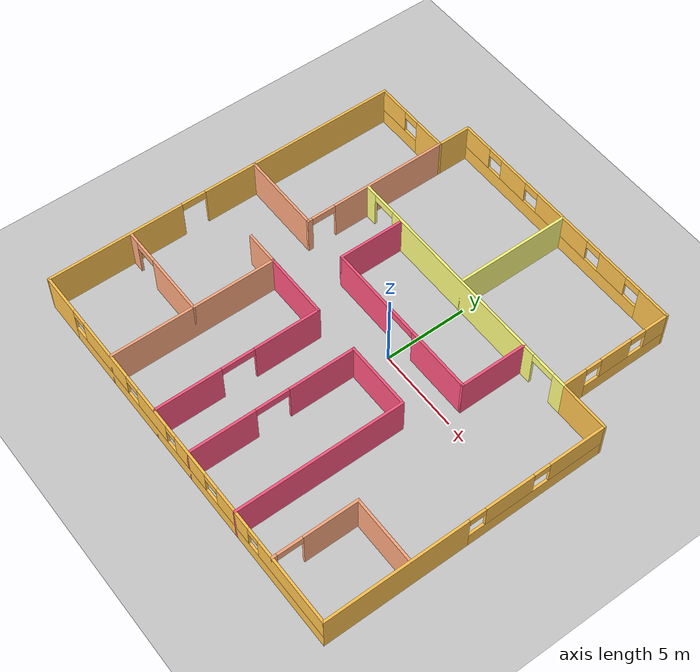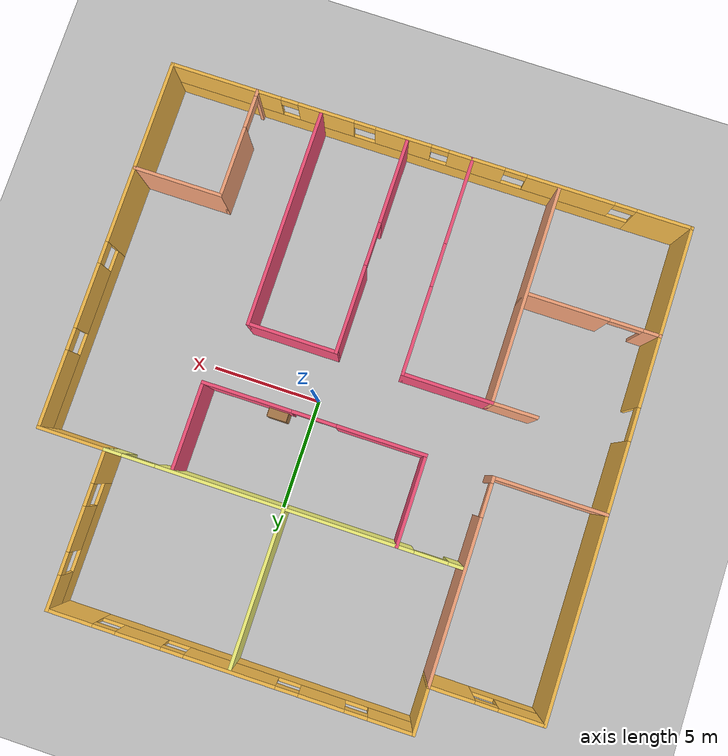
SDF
<sdf version="1.6">
 <world name="default">
  <model name="ground_plane">
   <static>1</static>
   <link name="link">
    <collision name="collision">
     <geometry><plane><normal>0 0 1</normal><size>100 100</size></plane></geometry>
     <surface><friction><ode><mu>100</mu><mu2>50</mu2></ode></friction></surface>
    </collision>
    <visual name="visual">
     <cast_shadows>0</cast_shadows>
     <geometry><plane><normal>0 0 1</normal><size>100 100</size></plane></geometry>
     <material>
      <script><uri>file://media/materials/scripts/gazebo.material</uri><name>Gazebo/Grey</name></script>
     </material>
    </visual>
   </link>
  </model>
  <model name="myWorld">
   <pose>-1.22392 -0.0788 0 0 -0 0</pose>
   <link name="Wall_0">
    <pose>0 -12 0 0 -0 0</pose>
    <visual name="Wall_0_Visual_0">
     <pose>-10.7875 0 1.25 0 -0 0</pose>
     <geometry><box><size>2.575 0.15 2.5</size></box></geometry>
     <material>
      <script><uri>file://media/materials/scripts/gazebo.material</uri><name>Gazebo/Grey</name></script>
      <ambient>1 0.764706 0.305882 1</ambient>
     </material>
     <meta><layer>0</layer></meta>
    </visual>
    <collision name="Wall_0_Collision_0">
     <geometry><box><size>2.575 0.15 2.5</size></box></geometry>
     <pose>-10.7875 0 1.25 0 -0 0</pose>
    </collision>
    <visual name="Wall_0_Visual_1">
     <pose>1.2875 0 0.5 0 -0 0</pose>
     <geometry><box><size>21.575 0.15 1</size></box></geometry>
     <material>
      <script><uri>file://media/materials/scripts/gazebo.material</uri><name>Gazebo/Grey</name></script>
      <ambient>1 0.764706 0.305882 1</ambient>
     </material>
     <meta><layer>0</layer></meta>
    </visual>
    <collision name="Wall_0_Collision_1">
     <geometry><box><size>21.575 0.15 1</size></box></geometry>
     <pose>1.2875 0 0.5 0 -0 0</pose>
    </collision>
    <visual name="Wall_0_Visual_2">
     <pose>-6.495 0 1.75 0 -0 0</pose>
     <geometry><box><size>4.01 0.15 1.5</size></box></geometry>
     <material>
      <script><uri>file://media/materials/scripts/gazebo.material</uri><name>Gazebo/Grey</name></script>
      <ambient>1 0.764706 0.305882 1</ambient>
     </material>
     <meta><layer>0</layer></meta>
    </visual>
    <collision name="Wall_0_Collision_2">
     <geometry><box><size>4.01 0.15 1.5</size></box></geometry>
     <pose>-6.495 0 1.75 0 -0 0</pose>
    </collision>
    <visual name="Wall_0_Visual_3">
     <pose>-2.195 0 1.75 0 -0 0</pose>
     <geometry><box><size>2.59 0.15 1.5</size></box></geometry>
     <material>
      <script><uri>file://media/materials/scripts/gazebo.material</uri><name>Gazebo/Grey</name></script>
      <ambient>1 0.764706 0.305882 1</ambient>
     </material>
     <meta><layer>0</layer></meta>
    </visual>
    <collision name="Wall_0_Collision_3">
     <geometry><box><size>2.59 0.15 1.5</size></box></geometry>
     <pose>-2.195 0 1.75 0 -0 0</pose>
    </collision>
    <visual name="Wall_0_Visual_4">
     <pose>1.195 0 1.75 0 -0 0</pose>
     <geometry><box><size>2.59 0.15 1.5</size></box></geometry>
     <material>
      <script><uri>file://media/materials/scripts/gazebo.material</uri><name>Gazebo/Grey</name></script>
      <ambient>1 0.764706 0.305882 1</ambient>
     </material>
     <meta><layer>0</layer></meta>
    </visual>
    <collision name="Wall_0_Collision_4">
     <geometry><box><size>2.59 0.15 1.5</size></box></geometry>
     <pose>1.195 0 1.75 0 -0 0</pose>
    </collision>
    <visual name="Wall_0_Visual_5">
     <pose>4.795 0 1.75 0 -0 0</pose>
     <geometry><box><size>2.61 0.15 1.5</size></box></geometry>
     <material>
      <script><uri>file://media/materials/scripts/gazebo.material</uri><name>Gazebo/Grey</name></script>
      <ambient>1 0.764706 0.305882 1</ambient>
     </material>
     <meta><layer>0</layer></meta>
    </visual>
    <collision name="Wall_0_Collision_5">
     <geometry><box><size>2.61 0.15 1.5</size></box></geometry>
     <pose>4.795 0 1.75 0 -0 0</pose>
    </collision>
    <visual name="Wall_0_Visual_6">
     <pose>9.4875 0 1.75 0 -0 0</pose>
     <geometry><box><size>5.175 0.15 1.5</size></box></geometry>
     <material>
      <script><uri>file://media/materials/scripts/gazebo.material</uri><name>Gazebo/Grey</name></script>
      <ambient>1 0.764706 0.305882 1</ambient>
     </material>
     <meta><layer>0</layer></meta>
    </visual>
    <collision name="Wall_0_Collision_6">
     <geometry><box><size>5.175 0.15 1.5</size></box></geometry>
     <pose>9.4875 0 1.75 0 -0 0</pose>
    </collision>
    <visual name="Wall_0_Visual_7">
     <pose>-9 0 2.25 0 -0 0</pose>
     <geometry><box><size>1 0.15 0.5</size></box></geometry>
     <material>
      <script><uri>file://media/materials/scripts/gazebo.material</uri><name>Gazebo/Grey</name></script>
      <ambient>1 0.764706 0.305882 1</ambient>
     </material>
     <meta><layer>0</layer></meta>
    </visual>
    <collision name="Wall_0_Collision_7">
     <geometry><box><size>1 0.15 0.5</size></box></geometry>
     <pose>-9 0 2.25 0 -0 0</pose>
    </collision>
    <visual name="Wall_0_Visual_8">
     <pose>-3.99 0 2.25 0 -0 0</pose>
     <geometry><box><size>1 0.15 0.5</size></box></geometry>
     <material>
      <script><uri>file://media/materials/scripts/gazebo.material</uri><name>Gazebo/Grey</name></script>
      <ambient>1 0.764706 0.305882 1</ambient>
     </material>
     <meta><layer>0</layer></meta>
    </visual>
    <collision name="Wall_0_Collision_8">
     <geometry><box><size>1 0.15 0.5</size></box></geometry>
     <pose>-3.99 0 2.25 0 -0 0</pose>
    </collision>
    <visual name="Wall_0_Visual_9">
     <pose>-0.5 0 2.25 0 -0 0</pose>
     <geometry><box><size>0.8 0.15 0.5</size></box></geometry>
     <material>
      <script><uri>file://media/materials/scripts/gazebo.material</uri><name>Gazebo/Grey</name></script>
      <ambient>1 0.764706 0.305882 1</ambient>
     </material>
     <meta><layer>0</layer></meta>
    </visual>
    <collision name="Wall_0_Collision_9">
     <geometry><box><size>0.8 0.15 0.5</size></box></geometry>
     <pose>-0.5 0 2.25 0 -0 0</pose>
    </collision>
    <visual name="Wall_0_Visual_10">
     <pose>2.99 0 2.25 0 -0 0</pose>
     <geometry><box><size>1 0.15 0.5</size></box></geometry>
     <material>
      <script><uri>file://media/materials/scripts/gazebo.material</uri><name>Gazebo/Grey</name></script>
      <ambient>1 0.764706 0.305882 1</ambient>
     </material>
     <meta><layer>0</layer></meta>
    </visual>
    <collision name="Wall_0_Collision_10">
     <geometry><box><size>1 0.15 0.5</size></box></geometry>
     <pose>2.99 0 2.25 0 -0 0</pose>
    </collision>
    <visual name="Wall_0_Visual_11">
     <pose>6.5 0 2.25 0 -0 0</pose>
     <geometry><box><size>0.8 0.15 0.5</size></box></geometry>
     <material>
      <script><uri>file://media/materials/scripts/gazebo.material</uri><name>Gazebo/Grey</name></script>
      <ambient>1 0.764706 0.305882 1</ambient>
     </material>
     <meta><layer>0</layer></meta>
    </visual>
    <collision name="Wall_0_Collision_11">
     <geometry><box><size>0.8 0.15 0.5</size></box></geometry>
     <pose>6.5 0 2.25 0 -0 0</pose>
    </collision>
   </link>
   <link name="Wall_10">
    <collision name="Wall_10_Collision">
     <geometry><box><size>10.15 0.15 2.5</size></box></geometry>
     <pose>0 0 1.25 0 -0 0</pose>
    </collision>
    <visual name="Wall_10_Visual">
     <pose>0 0 1.25 0 -0 0</pose>
     <geometry><box><size>10.15 0.15 2.5</size></box></geometry>
     <material>
      <script><uri>file://media/materials/scripts/gazebo.material</uri><name>Gazebo/Grey</name></script>
      <ambient>1 0.666667 0.498039 1</ambient>
     </material>
     <meta><layer>0</layer></meta>
    </visual>
    <pose>-6 -7 0 0 -0 1.5708</pose>
   </link>
   <link name="Wall_12">
    <pose>-9 -7 0 0 -0 0</pose>
    <visual name="Wall_12_Visual_0">
     <pose>-2.6625 0 1.25 0 -0 0</pose>
     <geometry><box><size>0.825 0.15 2.5</size></box></geometry>
     <material>
      <script><uri>file://media/materials/scripts/gazebo.material</uri><name>Gazebo/Grey</name></script>
      <ambient>1 0.666667 0.498039 1</ambient>
     </material>
     <meta><layer>0</layer></meta>
    </visual>
    <collision name="Wall_12_Collision_0">
     <geometry><box><size>0.825 0.15 2.5</size></box></geometry>
     <pose>-2.6625 0 1.25 0 -0 0</pose>
    </collision>
    <visual name="Wall_12_Visual_1">
     <pose>1.1625 0 1.25 0 -0 0</pose>
     <geometry><box><size>3.825 0.15 2.5</size></box></geometry>
     <material>
      <script><uri>file://media/materials/scripts/gazebo.material</uri><name>Gazebo/Grey</name></script>
      <ambient>1 0.666667 0.498039 1</ambient>
     </material>
     <meta><layer>0</layer></meta>
    </visual>
    <collision name="Wall_12_Collision_1">
     <geometry><box><size>3.825 0.15 2.5</size></box></geometry>
     <pose>1.1625 0 1.25 0 -0 0</pose>
    </collision>
    <visual name="Wall_12_Visual_2">
     <pose>-1.5 0 2.25 0 -0 0</pose>
     <geometry><box><size>1.5 0.15 0.5</size></box></geometry>
     <material>
      <script><uri>file://media/materials/scripts/gazebo.material</uri><name>Gazebo/Grey</name></script>
      <ambient>1 0.666667 0.498039 1</ambient>
     </material>
     <meta><layer>0</layer></meta>
    </visual>
    <collision name="Wall_12_Collision_2">
     <geometry><box><size>1.5 0.15 0.5</size></box></geometry>
     <pose>-1.5 0 2.25 0 -0 0</pose>
    </collision>
   </link>
   <link name="Wall_13">
    <collision name="Wall_13_Collision">
     <geometry><box><size>2.15 0.15 2.5</size></box></geometry>
     <pose>0 0 1.25 0 -0 0</pose>
    </collision>
    <visual name="Wall_13_Visual">
     <pose>0 0 1.25 0 -0 0</pose>
     <geometry><box><size>2.15 0.15 2.5</size></box></geometry>
     <material>
      <script><uri>file://media/materials/scripts/gazebo.material</uri><name>Gazebo/Grey</name></script>
      <ambient>1 0.666667 0.498039 1</ambient>
     </material>
     <meta><layer>0</layer></meta>
    </visual>
    <pose>-7 -2 0 0 -0 0</pose>
   </link>
   <link name="Wall_14">
    <collision name="Wall_14_Collision">
     <geometry><box><size>4.15 0.15 2.5</size></box></geometry>
     <pose>0 0 1.25 0 -0 0</pose>
    </collision>
    <visual name="Wall_14_Visual">
     <pose>0 0 1.25 0 -0 0</pose>
     <geometry><box><size>4.15 0.15 2.5</size></box></geometry>
     <material>
      <script><uri>file://media/materials/scripts/gazebo.material</uri><name>Gazebo/Grey</name></script>
      <ambient>1 0.333333 0.498039 1</ambient>
     </material>
     <meta><layer>0</layer></meta>
    </visual>
    <pose>-4 -2 0 0 -0 0</pose>
   </link>
   <link name="Wall_16">
    <pose>-2 -7 0 0 0 -1.5708</pose>
    <visual name="Wall_16_Visual_0">
     <pose>-3.0375 0 1.25 0 -0 0</pose>
     <geometry><box><size>4.075 0.15 2.5</size></box></geometry>
     <material>
      <script><uri>file://media/materials/scripts/gazebo.material</uri><name>Gazebo/Grey</name></script>
      <ambient>1 0.333333 0.498039 1</ambient>
     </material>
     <meta><layer>0</layer></meta>
    </visual>
    <collision name="Wall_16_Collision_0">
     <geometry><box><size>4.075 0.15 2.5</size></box></geometry>
     <pose>-3.0375 0 1.25 0 -0 0</pose>
    </collision>
    <visual name="Wall_16_Visual_1">
     <pose>3.0375 0 1.25 0 -0 0</pose>
     <geometry><box><size>4.075 0.15 2.5</size></box></geometry>
     <material>
      <script><uri>file://media/materials/scripts/gazebo.material</uri><name>Gazebo/Grey</name></script>
      <ambient>1 0.333333 0.498039 1</ambient>
     </material>
     <meta><layer>0</layer></meta>
    </visual>
    <collision name="Wall_16_Collision_1">
     <geometry><box><size>4.075 0.15 2.5</size></box></geometry>
     <pose>3.0375 0 1.25 0 -0 0</pose>
    </collision>
    <visual name="Wall_16_Visual_2">
     <pose>0 0 2.25 0 -0 0</pose>
     <geometry><box><size>2 0.15 0.5</size></box></geometry>
     <material>
      <script><uri>file://media/materials/scripts/gazebo.material</uri><name>Gazebo/Grey</name></script>
      <ambient>1 0.333333 0.498039 1</ambient>
     </material>
     <meta><layer>0</layer></meta>
    </visual>
    <collision name="Wall_16_Collision_2">
     <geometry><box><size>2 0.15 0.5</size></box></geometry>
     <pose>0 0 2.25 0 -0 0</pose>
    </collision>
   </link>
   <link name="Wall_18">
    <collision name="Wall_18_Collision">
     <geometry><box><size>4.15 0.15 2.5</size></box></geometry>
     <pose>0 0 1.25 0 -0 0</pose>
    </collision>
    <visual name="Wall_18_Visual">
     <pose>0 0 1.25 0 -0 0</pose>
     <geometry><box><size>4.15 0.15 2.5</size></box></geometry>
     <material>
      <script><uri>file://media/materials/scripts/gazebo.material</uri><name>Gazebo/Grey</name></script>
      <ambient>1 0.333333 0.498039 1</ambient>
     </material>
     <meta><layer>0</layer></meta>
    </visual>
    <pose>3 -2 0 0 -0 0</pose>
   </link>
   <link name="Wall_2">
    <pose>12 -3.5 0 0 -0 1.5708</pose>
    <visual name="Wall_2_Visual_0">
     <pose>-4.2875 0 1.25 0 -0 0</pose>
     <geometry><box><size>8.575 0.15 2.5</size></box></geometry>
     <material>
      <script><uri>file://media/materials/scripts/gazebo.material</uri><name>Gazebo/Grey</name></script>
      <ambient>1 0.764706 0.305882 1</ambient>
     </material>
     <meta><layer>0</layer></meta>
    </visual>
    <collision name="Wall_2_Collision_0">
     <geometry><box><size>8.575 0.15 2.5</size></box></geometry>
     <pose>-4.2875 0 1.25 0 -0 0</pose>
    </collision>
    <visual name="Wall_2_Visual_1">
     <pose>4.2875 0 0.5 0 -0 0</pose>
     <geometry><box><size>8.575 0.15 1</size></box></geometry>
     <material>
      <script><uri>file://media/materials/scripts/gazebo.material</uri><name>Gazebo/Grey</name></script>
      <ambient>1 0.764706 0.305882 1</ambient>
     </material>
     <meta><layer>0</layer></meta>
    </visual>
    <collision name="Wall_2_Collision_1">
     <geometry><box><size>8.575 0.15 1</size></box></geometry>
     <pose>4.2875 0 0.5 0 -0 0</pose>
    </collision>
    <visual name="Wall_2_Visual_2">
     <pose>2.5 0 1.75 0 -0 0</pose>
     <geometry><box><size>3 0.15 1.5</size></box></geometry>
     <material>
      <script><uri>file://media/materials/scripts/gazebo.material</uri><name>Gazebo/Grey</name></script>
      <ambient>1 0.764706 0.305882 1</ambient>
     </material>
     <meta><layer>0</layer></meta>
    </visual>
    <collision name="Wall_2_Collision_2">
     <geometry><box><size>3 0.15 1.5</size></box></geometry>
     <pose>2.5 0 1.75 0 -0 0</pose>
    </collision>
    <visual name="Wall_2_Visual_3">
     <pose>6.7875 0 1.75 0 -0 0</pose>
     <geometry><box><size>3.575 0.15 1.5</size></box></geometry>
     <material>
      <script><uri>file://media/materials/scripts/gazebo.material</uri><name>Gazebo/Grey</name></script>
      <ambient>1 0.764706 0.305882 1</ambient>
     </material>
     <meta><layer>0</layer></meta>
    </visual>
    <collision name="Wall_2_Collision_3">
     <geometry><box><size>3.575 0.15 1.5</size></box></geometry>
     <pose>6.7875 0 1.75 0 -0 0</pose>
    </collision>
    <visual name="Wall_2_Visual_4">
     <pose>0.5 0 2.25 0 -0 0</pose>
     <geometry><box><size>1 0.15 0.5</size></box></geometry>
     <material>
      <script><uri>file://media/materials/scripts/gazebo.material</uri><name>Gazebo/Grey</name></script>
      <ambient>1 0.764706 0.305882 1</ambient>
     </material>
     <meta><layer>0</layer></meta>
    </visual>
    <collision name="Wall_2_Collision_4">
     <geometry><box><size>1 0.15 0.5</size></box></geometry>
     <pose>0.5 0 2.25 0 -0 0</pose>
    </collision>
    <visual name="Wall_2_Visual_5">
     <pose>4.5 0 2.25 0 -0 0</pose>
     <geometry><box><size>1 0.15 0.5</size></box></geometry>
     <material>
      <script><uri>file://media/materials/scripts/gazebo.material</uri><name>Gazebo/Grey</name></script>
      <ambient>1 0.764706 0.305882 1</ambient>
     </material>
     <meta><layer>0</layer></meta>
    </visual>
    <collision name="Wall_2_Collision_5">
     <geometry><box><size>1 0.15 0.5</size></box></geometry>
     <pose>4.5 0 2.25 0 -0 0</pose>
    </collision>
   </link>
   <link name="Wall_20">
    <pose>1 -7 0 0 0 -1.5708</pose>
    <visual name="Wall_20_Visual_0">
     <pose>-3.0375 0 1.25 0 -0 0</pose>
     <geometry><box><size>4.075 0.15 2.5</size></box></geometry>
     <material>
      <script><uri>file://media/materials/scripts/gazebo.material</uri><name>Gazebo/Grey</name></script>
      <ambient>1 0.333333 0.498039 1</ambient>
     </material>
     <meta><layer>0</layer></meta>
    </visual>
    <collision name="Wall_20_Collision_0">
     <geometry><box><size>4.075 0.15 2.5</size></box></geometry>
     <pose>-3.0375 0 1.25 0 -0 0</pose>
    </collision>
    <visual name="Wall_20_Visual_1">
     <pose>3.0375 0 1.25 0 -0 0</pose>
     <geometry><box><size>4.075 0.15 2.5</size></box></geometry>
     <material>
      <script><uri>file://media/materials/scripts/gazebo.material</uri><name>Gazebo/Grey</name></script>
      <ambient>1 0.333333 0.498039 1</ambient>
     </material>
     <meta><layer>0</layer></meta>
    </visual>
    <collision name="Wall_20_Collision_1">
     <geometry><box><size>4.075 0.15 2.5</size></box></geometry>
     <pose>3.0375 0 1.25 0 -0 0</pose>
    </collision>
    <visual name="Wall_20_Visual_2">
     <pose>0 0 2.25 0 -0 0</pose>
     <geometry><box><size>2 0.15 0.5</size></box></geometry>
     <material>
      <script><uri>file://media/materials/scripts/gazebo.material</uri><name>Gazebo/Grey</name></script>
      <ambient>1 0.333333 0.498039 1</ambient>
     </material>
     <meta><layer>0</layer></meta>
    </visual>
    <collision name="Wall_20_Collision_2">
     <geometry><box><size>2 0.15 0.5</size></box></geometry>
     <pose>0 0 2.25 0 -0 0</pose>
    </collision>
   </link>
   <link name="Wall_22">
    <collision name="Wall_22_Collision">
     <geometry><box><size>10.15 0.15 2.5</size></box></geometry>
     <pose>0 0 1.25 0 -0 0</pose>
    </collision>
    <visual name="Wall_22_Visual">
     <pose>0 0 1.25 0 -0 0</pose>
     <geometry><box><size>10.15 0.15 2.5</size></box></geometry>
     <material>
      <script><uri>file://media/materials/scripts/gazebo.material</uri><name>Gazebo/Grey</name></script>
      <ambient>1 0.333333 0.498039 1</ambient>
     </material>
     <meta><layer>0</layer></meta>
    </visual>
    <pose>5 -7 0 0 0 -1.5708</pose>
   </link>
   <link name="Wall_24">
    <collision name="Wall_24_Collision">
     <geometry><box><size>5.15 0.15 2.5</size></box></geometry>
     <pose>0 0 1.25 0 -0 0</pose>
    </collision>
    <visual name="Wall_24_Visual">
     <pose>0 0 1.25 0 -0 0</pose>
     <geometry><box><size>5.15 0.15 2.5</size></box></geometry>
     <material>
      <script><uri>file://media/materials/scripts/gazebo.material</uri><name>Gazebo/Grey</name></script>
      <ambient>1 0.666667 0.498039 1</ambient>
     </material>
     <meta><layer>0</layer></meta>
    </visual>
    <pose>-9.5 1 0 0 -0 0</pose>
   </link>
   <link name="Wall_25">
    <pose>-7 5.5 0 0 -0 1.5708</pose>
    <visual name="Wall_25_Visual_0">
     <pose>-4.4125 0 1.25 0 -0 0</pose>
     <geometry><box><size>0.325 0.15 2.5</size></box></geometry>
     <material>
      <script><uri>file://media/materials/scripts/gazebo.material</uri><name>Gazebo/Grey</name></script>
      <ambient>1 0.666667 0.498039 1</ambient>
     </material>
     <meta><layer>0</layer></meta>
    </visual>
    <collision name="Wall_25_Collision_0">
     <geometry><box><size>0.325 0.15 2.5</size></box></geometry>
     <pose>-4.4125 0 1.25 0 -0 0</pose>
    </collision>
    <visual name="Wall_25_Visual_1">
     <pose>0.9125 0 1.25 0 -0 0</pose>
     <geometry><box><size>7.325 0.15 2.5</size></box></geometry>
     <material>
      <script><uri>file://media/materials/scripts/gazebo.material</uri><name>Gazebo/Grey</name></script>
      <ambient>1 0.666667 0.498039 1</ambient>
     </material>
     <meta><layer>0</layer></meta>
    </visual>
    <collision name="Wall_25_Collision_1">
     <geometry><box><size>7.325 0.15 2.5</size></box></geometry>
     <pose>0.9125 0 1.25 0 -0 0</pose>
    </collision>
    <visual name="Wall_25_Visual_2">
     <pose>-3.5 0 2.25 0 -0 0</pose>
     <geometry><box><size>1.5 0.15 0.5</size></box></geometry>
     <material>
      <script><uri>file://media/materials/scripts/gazebo.material</uri><name>Gazebo/Grey</name></script>
      <ambient>1 0.666667 0.498039 1</ambient>
     </material>
     <meta><layer>0</layer></meta>
    </visual>
    <collision name="Wall_25_Collision_2">
     <geometry><box><size>1.5 0.15 0.5</size></box></geometry>
     <pose>-3.5 0 2.25 0 -0 0</pose>
    </collision>
   </link>
   <link name="Wall_27">
    <pose>1 5 0 0 -0 0</pose>
    <visual name="Wall_27_Visual_0">
     <pose>-7.6625 0 1.25 0 -0 0</pose>
     <geometry><box><size>0.825 0.15 2.5</size></box></geometry>
     <material>
      <script><uri>file://media/materials/scripts/gazebo.material</uri><name>Gazebo/Grey</name></script>
      <ambient>1 1 0.498039 1</ambient>
     </material>
     <meta><layer>0</layer></meta>
    </visual>
    <collision name="Wall_27_Collision_0">
     <geometry><box><size>0.825 0.15 2.5</size></box></geometry>
     <pose>-7.6625 0 1.25 0 -0 0</pose>
    </collision>
    <visual name="Wall_27_Visual_1">
     <pose>0 0 1.25 0 -0 0</pose>
     <geometry><box><size>11.5 0.15 2.5</size></box></geometry>
     <material>
      <script><uri>file://media/materials/scripts/gazebo.material</uri><name>Gazebo/Grey</name></script>
      <ambient>1 1 0.498039 1</ambient>
     </material>
     <meta><layer>0</layer></meta>
    </visual>
    <collision name="Wall_27_Collision_1">
     <geometry><box><size>11.5 0.15 2.5</size></box></geometry>
     <pose>0 0 1.25 0 -0 0</pose>
    </collision>
    <visual name="Wall_27_Visual_2">
     <pose>7.6625 0 1.25 0 -0 0</pose>
     <geometry><box><size>0.825 0.15 2.5</size></box></geometry>
     <material>
      <script><uri>file://media/materials/scripts/gazebo.material</uri><name>Gazebo/Grey</name></script>
      <ambient>1 1 0.498039 1</ambient>
     </material>
     <meta><layer>0</layer></meta>
    </visual>
    <collision name="Wall_27_Collision_2">
     <geometry><box><size>0.825 0.15 2.5</size></box></geometry>
     <pose>7.6625 0 1.25 0 -0 0</pose>
    </collision>
    <visual name="Wall_27_Visual_3">
     <pose>-6.5 0 2.25 0 -0 0</pose>
     <geometry><box><size>1.5 0.15 0.5</size></box></geometry>
     <material>
      <script><uri>file://media/materials/scripts/gazebo.material</uri><name>Gazebo/Grey</name></script>
      <ambient>1 1 0.498039 1</ambient>
     </material>
     <meta><layer>0</layer></meta>
    </visual>
    <collision name="Wall_27_Collision_3">
     <geometry><box><size>1.5 0.15 0.5</size></box></geometry>
     <pose>-6.5 0 2.25 0 -0 0</pose>
    </collision>
    <visual name="Wall_27_Visual_4">
     <pose>6.5 0 2.25 0 -0 0</pose>
     <geometry><box><size>1.5 0.15 0.5</size></box></geometry>
     <material>
      <script><uri>file://media/materials/scripts/gazebo.material</uri><name>Gazebo/Grey</name></script>
      <ambient>1 1 0.498039 1</ambient>
     </material>
     <meta><layer>0</layer></meta>
    </visual>
    <collision name="Wall_27_Collision_4">
     <geometry><box><size>1.5 0.15 0.5</size></box></geometry>
     <pose>6.5 0 2.25 0 -0 0</pose>
    </collision>
   </link>
   <link name="Wall_29">
    <collision name="Wall_29_Collision">
     <geometry><box><size>4.15 0.15 2.5</size></box></geometry>
     <pose>0 0 1.25 0 -0 0</pose>
    </collision>
    <visual name="Wall_29_Visual">
     <pose>0 0 1.25 0 -0 0</pose>
     <geometry><box><size>4.15 0.15 2.5</size></box></geometry>
     <material>
      <script><uri>file://media/materials/scripts/gazebo.material</uri><name>Gazebo/Grey</name></script>
      <ambient>1 0.333333 0.498039 1</ambient>
     </material>
     <meta><layer>0</layer></meta>
    </visual>
    <pose>-4 3 0 0 0 -1.5708</pose>
   </link>
   <link name="Wall_3">
    <collision name="Wall_3_Collision">
     <geometry><box><size>3.15 0.15 2.5</size></box></geometry>
     <pose>0 0 1.25 0 -0 0</pose>
    </collision>
    <visual name="Wall_3_Visual">
     <pose>0 0 1.25 0 -0 0</pose>
     <geometry><box><size>3.15 0.15 2.5</size></box></geometry>
     <material>
      <script><uri>file://media/materials/scripts/gazebo.material</uri><name>Gazebo/Grey</name></script>
      <ambient>1 0.764706 0.305882 1</ambient>
     </material>
     <meta><layer>0</layer></meta>
    </visual>
    <pose>10.5 5 0 0 -0 3.14159</pose>
   </link>
   <link name="Wall_30">
    <pose>1 1 0 0 -0 0</pose>
    <visual name="Wall_30_Visual_0">
     <pose>-3.0375 0 1.25 0 -0 0</pose>
     <geometry><box><size>4.075 0.15 2.5</size></box></geometry>
     <material>
      <script><uri>file://media/materials/scripts/gazebo.material</uri><name>Gazebo/Grey</name></script>
      <ambient>1 0.333333 0.498039 1</ambient>
     </material>
     <meta><layer>0</layer></meta>
    </visual>
    <collision name="Wall_30_Collision_0">
     <geometry><box><size>4.075 0.15 2.5</size></box></geometry>
     <pose>-3.0375 0 1.25 0 -0 0</pose>
    </collision>
    <visual name="Wall_30_Visual_1">
     <pose>3.0375 0 1.25 0 -0 0</pose>
     <geometry><box><size>4.075 0.15 2.5</size></box></geometry>
     <material>
      <script><uri>file://media/materials/scripts/gazebo.material</uri><name>Gazebo/Grey</name></script>
      <ambient>1 0.333333 0.498039 1</ambient>
     </material>
     <meta><layer>0</layer></meta>
    </visual>
    <collision name="Wall_30_Collision_1">
     <geometry><box><size>4.075 0.15 2.5</size></box></geometry>
     <pose>3.0375 0 1.25 0 -0 0</pose>
    </collision>
    <visual name="Wall_30_Visual_2">
     <pose>0 0 2.25 0 -0 0</pose>
     <geometry><box><size>2 0.15 0.5</size></box></geometry>
     <material>
      <script><uri>file://media/materials/scripts/gazebo.material</uri><name>Gazebo/Grey</name></script>
      <ambient>1 0.333333 0.498039 1</ambient>
     </material>
     <meta><layer>0</layer></meta>
    </visual>
    <collision name="Wall_30_Collision_2">
     <geometry><box><size>2 0.15 0.5</size></box></geometry>
     <pose>0 0 2.25 0 -0 0</pose>
    </collision>
   </link>
   <link name="Wall_32">
    <collision name="Wall_32_Collision">
     <geometry><box><size>4.15 0.15 2.5</size></box></geometry>
     <pose>0 0 1.25 0 -0 0</pose>
    </collision>
    <visual name="Wall_32_Visual">
     <pose>0 0 1.25 0 -0 0</pose>
     <geometry><box><size>4.15 0.15 2.5</size></box></geometry>
     <material>
      <script><uri>file://media/materials/scripts/gazebo.material</uri><name>Gazebo/Grey</name></script>
      <ambient>1 0.333333 0.498039 1</ambient>
     </material>
     <meta><layer>0</layer></meta>
    </visual>
    <pose>6 3 0 0 -0 1.5708</pose>
   </link>
   <link name="Wall_34">
    <collision name="Wall_34_Collision">
     <geometry><box><size>7.15 0.15 2.5</size></box></geometry>
     <pose>0 0 1.25 0 -0 0</pose>
    </collision>
    <visual name="Wall_34_Visual">
     <pose>0 0 1.25 0 -0 0</pose>
     <geometry><box><size>7.15 0.15 2.5</size></box></geometry>
     <material>
      <script><uri>file://media/materials/scripts/gazebo.material</uri><name>Gazebo/Grey</name></script>
      <ambient>1 1 0.498039 1</ambient>
     </material>
     <meta><layer>0</layer></meta>
    </visual>
    <pose>1 8.5 0 0 -0 1.5708</pose>
   </link>
   <link name="Wall_36">
    <pose>8 -9.5 0 0 -0 1.5708</pose>
    <visual name="Wall_36_Visual_0">
     <pose>-2.4125 0 1.25 0 -0 0</pose>
     <geometry><box><size>0.325 0.15 2.5</size></box></geometry>
     <material>
      <script><uri>file://media/materials/scripts/gazebo.material</uri><name>Gazebo/Grey</name></script>
      <ambient>1 0.666667 0.498039 1</ambient>
     </material>
     <meta><layer>0</layer></meta>
    </visual>
    <collision name="Wall_36_Collision_0">
     <geometry><box><size>0.325 0.15 2.5</size></box></geometry>
     <pose>-2.4125 0 1.25 0 -0 0</pose>
    </collision>
    <visual name="Wall_36_Visual_1">
     <pose>0.9125 0 1.25 0 -0 0</pose>
     <geometry><box><size>3.325 0.15 2.5</size></box></geometry>
     <material>
      <script><uri>file://media/materials/scripts/gazebo.material</uri><name>Gazebo/Grey</name></script>
      <ambient>1 0.666667 0.498039 1</ambient>
     </material>
     <meta><layer>0</layer></meta>
    </visual>
    <collision name="Wall_36_Collision_1">
     <geometry><box><size>3.325 0.15 2.5</size></box></geometry>
     <pose>0.9125 0 1.25 0 -0 0</pose>
    </collision>
    <visual name="Wall_36_Visual_2">
     <pose>-1.5 0 2.25 0 -0 0</pose>
     <geometry><box><size>1.5 0.15 0.5</size></box></geometry>
     <material>
      <script><uri>file://media/materials/scripts/gazebo.material</uri><name>Gazebo/Grey</name></script>
      <ambient>1 0.666667 0.498039 1</ambient>
     </material>
     <meta><layer>0</layer></meta>
    </visual>
    <collision name="Wall_36_Collision_2">
     <geometry><box><size>1.5 0.15 0.5</size></box></geometry>
     <pose>-1.5 0 2.25 0 -0 0</pose>
    </collision>
   </link>
   <link name="Wall_37">
    <collision name="Wall_37_Collision">
     <geometry><box><size>4.15 0.15 2.5</size></box></geometry>
     <pose>0 0 1.25 0 -0 0</pose>
    </collision>
    <visual name="Wall_37_Visual">
     <pose>0 0 1.25 0 -0 0</pose>
     <geometry><box><size>4.15 0.15 2.5</size></box></geometry>
     <material>
      <script><uri>file://media/materials/scripts/gazebo.material</uri><name>Gazebo/Grey</name></script>
      <ambient>1 0.666667 0.498039 1</ambient>
     </material>
     <meta><layer>0</layer></meta>
    </visual>
    <pose>10 -7 0 0 -0 0</pose>
   </link>
   <link name="Wall_4">
    <pose>9 8.5 0 0 -0 1.5708</pose>
    <visual name="Wall_4_Visual_0">
     <pose>-2.7875 0 1.25 0 -0 0</pose>
     <geometry><box><size>1.575 0.15 2.5</size></box></geometry>
     <material>
      <script><uri>file://media/materials/scripts/gazebo.material</uri><name>Gazebo/Grey</name></script>
      <ambient>1 0.764706 0.305882 1</ambient>
     </material>
     <meta><layer>0</layer></meta>
    </visual>
    <collision name="Wall_4_Collision_0">
     <geometry><box><size>1.575 0.15 2.5</size></box></geometry>
     <pose>-2.7875 0 1.25 0 -0 0</pose>
    </collision>
    <visual name="Wall_4_Visual_1">
     <pose>0.7875 0 0.5 0 -0 0</pose>
     <geometry><box><size>5.575 0.15 1</size></box></geometry>
     <material>
      <script><uri>file://media/materials/scripts/gazebo.material</uri><name>Gazebo/Grey</name></script>
      <ambient>1 0.764706 0.305882 1</ambient>
     </material>
     <meta><layer>0</layer></meta>
    </visual>
    <collision name="Wall_4_Collision_1">
     <geometry><box><size>5.575 0.15 1</size></box></geometry>
     <pose>0.7875 0 0.5 0 -0 0</pose>
    </collision>
    <visual name="Wall_4_Visual_2">
     <pose>0 0 1.75 0 -0 0</pose>
     <geometry><box><size>2 0.15 1.5</size></box></geometry>
     <material>
      <script><uri>file://media/materials/scripts/gazebo.material</uri><name>Gazebo/Grey</name></script>
      <ambient>1 0.764706 0.305882 1</ambient>
     </material>
     <meta><layer>0</layer></meta>
    </visual>
    <collision name="Wall_4_Collision_2">
     <geometry><box><size>2 0.15 1.5</size></box></geometry>
     <pose>0 0 1.75 0 -0 0</pose>
    </collision>
    <visual name="Wall_4_Visual_3">
     <pose>2.7875 0 1.75 0 -0 0</pose>
     <geometry><box><size>1.575 0.15 1.5</size></box></geometry>
     <material>
      <script><uri>file://media/materials/scripts/gazebo.material</uri><name>Gazebo/Grey</name></script>
      <ambient>1 0.764706 0.305882 1</ambient>
     </material>
     <meta><layer>0</layer></meta>
    </visual>
    <collision name="Wall_4_Collision_3">
     <geometry><box><size>1.575 0.15 1.5</size></box></geometry>
     <pose>2.7875 0 1.75 0 -0 0</pose>
    </collision>
    <visual name="Wall_4_Visual_4">
     <pose>-1.5 0 2.25 0 -0 0</pose>
     <geometry><box><size>1 0.15 0.5</size></box></geometry>
     <material>
      <script><uri>file://media/materials/scripts/gazebo.material</uri><name>Gazebo/Grey</name></script>
      <ambient>1 0.764706 0.305882 1</ambient>
     </material>
     <meta><layer>0</layer></meta>
    </visual>
    <collision name="Wall_4_Collision_4">
     <geometry><box><size>1 0.15 0.5</size></box></geometry>
     <pose>-1.5 0 2.25 0 -0 0</pose>
    </collision>
    <visual name="Wall_4_Visual_5">
     <pose>1.5 0 2.25 0 -0 0</pose>
     <geometry><box><size>1 0.15 0.5</size></box></geometry>
     <material>
      <script><uri>file://media/materials/scripts/gazebo.material</uri><name>Gazebo/Grey</name></script>
      <ambient>1 0.764706 0.305882 1</ambient>
     </material>
     <meta><layer>0</layer></meta>
    </visual>
    <collision name="Wall_4_Collision_5">
     <geometry><box><size>1 0.15 0.5</size></box></geometry>
     <pose>1.5 0 2.25 0 -0 0</pose>
    </collision>
   </link>
   <link name="Wall_5">
    <pose>1 12 0 0 -0 3.14159</pose>
    <visual name="Wall_5_Visual_0">
     <pose>-7.0375 0 1.25 0 -0 0</pose>
     <geometry><box><size>2.075 0.15 2.5</size></box></geometry>
     <material>
      <script><uri>file://media/materials/scripts/gazebo.material</uri><name>Gazebo/Grey</name></script>
      <ambient>1 0.764706 0.305882 1</ambient>
     </material>
     <meta><layer>0</layer></meta>
    </visual>
    <collision name="Wall_5_Collision_0">
     <geometry><box><size>2.075 0.15 2.5</size></box></geometry>
     <pose>-7.0375 0 1.25 0 -0 0</pose>
    </collision>
    <visual name="Wall_5_Visual_1">
     <pose>1.0375 0 0.5 0 -0 0</pose>
     <geometry><box><size>14.075 0.15 1</size></box></geometry>
     <material>
      <script><uri>file://media/materials/scripts/gazebo.material</uri><name>Gazebo/Grey</name></script>
      <ambient>1 0.764706 0.305882 1</ambient>
     </material>
     <meta><layer>0</layer></meta>
    </visual>
    <collision name="Wall_5_Collision_1">
     <geometry><box><size>14.075 0.15 1</size></box></geometry>
     <pose>1.0375 0 0.5 0 -0 0</pose>
    </collision>
    <visual name="Wall_5_Visual_2">
     <pose>-4 0 1.75 0 -0 0</pose>
     <geometry><box><size>2 0.15 1.5</size></box></geometry>
     <material>
      <script><uri>file://media/materials/scripts/gazebo.material</uri><name>Gazebo/Grey</name></script>
      <ambient>1 0.764706 0.305882 1</ambient>
     </material>
     <meta><layer>0</layer></meta>
    </visual>
    <collision name="Wall_5_Collision_2">
     <geometry><box><size>2 0.15 1.5</size></box></geometry>
     <pose>-4 0 1.75 0 -0 0</pose>
    </collision>
    <visual name="Wall_5_Visual_3">
     <pose>0 0 1.75 0 -0 0</pose>
     <geometry><box><size>4 0.15 1.5</size></box></geometry>
     <material>
      <script><uri>file://media/materials/scripts/gazebo.material</uri><name>Gazebo/Grey</name></script>
      <ambient>1 0.764706 0.305882 1</ambient>
     </material>
     <meta><layer>0</layer></meta>
    </visual>
    <collision name="Wall_5_Collision_3">
     <geometry><box><size>4 0.15 1.5</size></box></geometry>
     <pose>0 0 1.75 0 -0 0</pose>
    </collision>
    <visual name="Wall_5_Visual_4">
     <pose>4 0 1.75 0 -0 0</pose>
     <geometry><box><size>2 0.15 1.5</size></box></geometry>
     <material>
      <script><uri>file://media/materials/scripts/gazebo.material</uri><name>Gazebo/Grey</name></script>
      <ambient>1 0.764706 0.305882 1</ambient>
     </material>
     <meta><layer>0</layer></meta>
    </visual>
    <collision name="Wall_5_Collision_4">
     <geometry><box><size>2 0.15 1.5</size></box></geometry>
     <pose>4 0 1.75 0 -0 0</pose>
    </collision>
    <visual name="Wall_5_Visual_5">
     <pose>7.0375 0 1.75 0 -0 0</pose>
     <geometry><box><size>2.075 0.15 1.5</size></box></geometry>
     <material>
      <script><uri>file://media/materials/scripts/gazebo.material</uri><name>Gazebo/Grey</name></script>
      <ambient>1 0.764706 0.305882 1</ambient>
     </material>
     <meta><layer>0</layer></meta>
    </visual>
    <collision name="Wall_5_Collision_5">
     <geometry><box><size>2.075 0.15 1.5</size></box></geometry>
     <pose>7.0375 0 1.75 0 -0 0</pose>
    </collision>
    <visual name="Wall_5_Visual_6">
     <pose>-5.5 0 2.25 0 -0 0</pose>
     <geometry><box><size>1 0.15 0.5</size></box></geometry>
     <material>
      <script><uri>file://media/materials/scripts/gazebo.material</uri><name>Gazebo/Grey</name></script>
      <ambient>1 0.764706 0.305882 1</ambient>
     </material>
     <meta><layer>0</layer></meta>
    </visual>
    <collision name="Wall_5_Collision_6">
     <geometry><box><size>1 0.15 0.5</size></box></geometry>
     <pose>-5.5 0 2.25 0 -0 0</pose>
    </collision>
    <visual name="Wall_5_Visual_7">
     <pose>-2.5 0 2.25 0 -0 0</pose>
     <geometry><box><size>1 0.15 0.5</size></box></geometry>
     <material>
      <script><uri>file://media/materials/scripts/gazebo.material</uri><name>Gazebo/Grey</name></script>
      <ambient>1 0.764706 0.305882 1</ambient>
     </material>
     <meta><layer>0</layer></meta>
    </visual>
    <collision name="Wall_5_Collision_7">
     <geometry><box><size>1 0.15 0.5</size></box></geometry>
     <pose>-2.5 0 2.25 0 -0 0</pose>
    </collision>
    <visual name="Wall_5_Visual_8">
     <pose>2.5 0 2.25 0 -0 0</pose>
     <geometry><box><size>1 0.15 0.5</size></box></geometry>
     <material>
      <script><uri>file://media/materials/scripts/gazebo.material</uri><name>Gazebo/Grey</name></script>
      <ambient>1 0.764706 0.305882 1</ambient>
     </material>
     <meta><layer>0</layer></meta>
    </visual>
    <collision name="Wall_5_Collision_8">
     <geometry><box><size>1 0.15 0.5</size></box></geometry>
     <pose>2.5 0 2.25 0 -0 0</pose>
    </collision>
    <visual name="Wall_5_Visual_9">
     <pose>5.5 0 2.25 0 -0 0</pose>
     <geometry><box><size>1 0.15 0.5</size></box></geometry>
     <material>
      <script><uri>file://media/materials/scripts/gazebo.material</uri><name>Gazebo/Grey</name></script>
      <ambient>1 0.764706 0.305882 1</ambient>
     </material>
     <meta><layer>0</layer></meta>
    </visual>
    <collision name="Wall_5_Collision_9">
     <geometry><box><size>1 0.15 0.5</size></box></geometry>
     <pose>5.5 0 2.25 0 -0 0</pose>
    </collision>
   </link>
   <link name="Wall_6">
    <collision name="Wall_6_Collision">
     <geometry><box><size>2.15 0.15 2.5</size></box></geometry>
     <pose>0 0 1.25 0 -0 0</pose>
    </collision>
    <visual name="Wall_6_Visual">
     <pose>0 0 1.25 0 -0 0</pose>
     <geometry><box><size>2.15 0.15 2.5</size></box></geometry>
     <material>
      <script><uri>file://media/materials/scripts/gazebo.material</uri><name>Gazebo/Grey</name></script>
      <ambient>1 0.764706 0.305882 1</ambient>
     </material>
     <meta><layer>0</layer></meta>
    </visual>
    <pose>-7 11 0 0 0 -1.5708</pose>
   </link>
   <link name="Wall_7">
    <pose>-9.5 10 0 0 -0 3.14159</pose>
    <visual name="Wall_7_Visual_0">
     <pose>-1.5425 0 1.25 0 -0 0</pose>
     <geometry><box><size>2.065 0.15 2.5</size></box></geometry>
     <material>
      <script><uri>file://media/materials/scripts/gazebo.material</uri><name>Gazebo/Grey</name></script>
      <ambient>1 0.764706 0.305882 1</ambient>
     </material>
     <meta><layer>0</layer></meta>
    </visual>
    <collision name="Wall_7_Collision_0">
     <geometry><box><size>2.065 0.15 2.5</size></box></geometry>
     <pose>-1.5425 0 1.25 0 -0 0</pose>
    </collision>
    <visual name="Wall_7_Visual_1">
     <pose>1.0325 0 0.5 0 -0 0</pose>
     <geometry><box><size>3.085 0.15 1</size></box></geometry>
     <material>
      <script><uri>file://media/materials/scripts/gazebo.material</uri><name>Gazebo/Grey</name></script>
      <ambient>1 0.764706 0.305882 1</ambient>
     </material>
     <meta><layer>0</layer></meta>
    </visual>
    <collision name="Wall_7_Collision_1">
     <geometry><box><size>3.085 0.15 1</size></box></geometry>
     <pose>1.0325 0 0.5 0 -0 0</pose>
    </collision>
    <visual name="Wall_7_Visual_2">
     <pose>1.5325 0 1.75 0 -0 0</pose>
     <geometry><box><size>2.085 0.15 1.5</size></box></geometry>
     <material>
      <script><uri>file://media/materials/scripts/gazebo.material</uri><name>Gazebo/Grey</name></script>
      <ambient>1 0.764706 0.305882 1</ambient>
     </material>
     <meta><layer>0</layer></meta>
    </visual>
    <collision name="Wall_7_Collision_2">
     <geometry><box><size>2.085 0.15 1.5</size></box></geometry>
     <pose>1.5325 0 1.75 0 -0 0</pose>
    </collision>
    <visual name="Wall_7_Visual_3">
     <pose>-0.01 0 2.25 0 -0 0</pose>
     <geometry><box><size>1 0.15 0.5</size></box></geometry>
     <material>
      <script><uri>file://media/materials/scripts/gazebo.material</uri><name>Gazebo/Grey</name></script>
      <ambient>1 0.764706 0.305882 1</ambient>
     </material>
     <meta><layer>0</layer></meta>
    </visual>
    <collision name="Wall_7_Collision_3">
     <geometry><box><size>1 0.15 0.5</size></box></geometry>
     <pose>-0.01 0 2.25 0 -0 0</pose>
    </collision>
   </link>
   <link name="Wall_8">
    <pose>-12 -1 0 0 0 -1.5708</pose>
    <visual name="Wall_8_Visual_0">
     <pose>-4.9125 0 1.25 0 -0 0</pose>
     <geometry><box><size>12.325 0.15 2.5</size></box></geometry>
     <material>
      <script><uri>file://media/materials/scripts/gazebo.material</uri><name>Gazebo/Grey</name></script>
      <ambient>1 0.764706 0.305882 1</ambient>
     </material>
     <meta><layer>0</layer></meta>
    </visual>
    <collision name="Wall_8_Collision_0">
     <geometry><box><size>12.325 0.15 2.5</size></box></geometry>
     <pose>-4.9125 0 1.25 0 -0 0</pose>
    </collision>
    <visual name="Wall_8_Visual_1">
     <pose>6.9125 0 1.25 0 -0 0</pose>
     <geometry><box><size>8.325 0.15 2.5</size></box></geometry>
     <material>
      <script><uri>file://media/materials/scripts/gazebo.material</uri><name>Gazebo/Grey</name></script>
      <ambient>1 0.764706 0.305882 1</ambient>
     </material>
     <meta><layer>0</layer></meta>
    </visual>
    <collision name="Wall_8_Collision_1">
     <geometry><box><size>8.325 0.15 2.5</size></box></geometry>
     <pose>6.9125 0 1.25 0 -0 0</pose>
    </collision>
    <visual name="Wall_8_Visual_2">
     <pose>2 0 2.25 0 -0 0</pose>
     <geometry><box><size>1.5 0.15 0.5</size></box></geometry>
     <material>
      <script><uri>file://media/materials/scripts/gazebo.material</uri><name>Gazebo/Grey</name></script>
      <ambient>1 0.764706 0.305882 1</ambient>
     </material>
     <meta><layer>0</layer></meta>
    </visual>
    <collision name="Wall_8_Collision_2">
     <geometry><box><size>1.5 0.15 0.5</size></box></geometry>
     <pose>2 0 2.25 0 -0 0</pose>
    </collision>
   </link>
   <static>1</static>
  </model>
  <model name="bookshelf_0">
   <static>1</static>
   <link name="link">
    <inertial><mass>1</mass></inertial>
    <collision name="back">
     <pose>0 0.005 0.6 0 -0 0</pose>
     <geometry><box><size>0.9 0.01 1.2</size></box></geometry>
    </collision>
    <visual name="visual1">
     <pose>0 0.005 0.6 0 -0 0</pose>
     <geometry><box><size>0.9 0.01 1.2</size></box></geometry>
     <material>
      <script><uri>file://media/materials/scripts/gazebo.material</uri><name>Gazebo/Wood</name></script>
     </material>
    </visual>
    <collision name="left_side">
     <pose>0.45 -0.195 0.6 0 -0 0</pose>
     <geometry><box><size>0.02 0.4 1.2</size></box></geometry>
    </collision>
    <visual name="visual2">
     <pose>0.45 -0.195 0.6 0 -0 0</pose>
     <geometry><box><size>0.02 0.4 1.2</size></box></geometry>
     <material>
      <script><uri>file://media/materials/scripts/gazebo.material</uri><name>Gazebo/Wood</name></script>
     </material>
    </visual>
    <collision name="right_side">
     <pose>-0.45 -0.195 0.6 0 -0 0</pose>
     <geometry><box><size>0.02 0.4 1.2</size></box></geometry>
    </collision>
    <visual name="visual3">
     <pose>-0.45 -0.195 0.6 0 -0 0</pose>
     <geometry><box><size>0.02 0.4 1.2</size></box></geometry>
     <material>
      <script><uri>file://media/materials/scripts/gazebo.material</uri><name>Gazebo/Wood</name></script>
     </material>
    </visual>
    <collision name="bottom">
     <pose>0 -0.195 0.03 0 -0 0</pose>
     <geometry><box><size>0.88 0.4 0.06</size></box></geometry>
    </collision>
    <visual name="visual4">
     <pose>0 -0.195 0.03 0 -0 0</pose>
     <geometry><box><size>0.88 0.4 0.06</size></box></geometry>
     <material>
      <script><uri>file://media/materials/scripts/gazebo.material</uri><name>Gazebo/Wood</name></script>
     </material>
    </visual>
    <collision name="top">
     <pose>0 -0.195 1.19 0 -0 0</pose>
     <geometry><box><size>0.88 0.4 0.02</size></box></geometry>
    </collision>
    <visual name="visual5">
     <pose>0 -0.195 1.19 0 -0 0</pose>
     <geometry><box><size>0.88 0.4 0.02</size></box></geometry>
     <material>
      <script><uri>file://media/materials/scripts/gazebo.material</uri><name>Gazebo/Wood</name></script>
     </material>
    </visual>
    <collision name="low_shelf">
     <pose>0 -0.195 0.43 0 -0 0</pose>
     <geometry><box><size>0.88 0.4 0.02</size></box></geometry>
    </collision>
    <visual name="visual6">
     <pose>0 -0.195 0.43 0 -0 0</pose>
     <geometry><box><size>0.88 0.4 0.02</size></box></geometry>
     <material>
      <script><uri>file://media/materials/scripts/gazebo.material</uri><name>Gazebo/Wood</name></script>
     </material>
    </visual>
    <collision name="high_shelf">
     <pose>0 -0.195 0.8 0 -0 0</pose>
     <geometry><box><size>0.88 0.4 0.02</size></box></geometry>
    </collision>
    <visual name="visual7">
     <pose>0 -0.195 0.8 0 -0 0</pose>
     <geometry><box><size>0.88 0.4 0.02</size></box></geometry>
     <material>
      <script><uri>file://media/materials/scripts/gazebo.material</uri><name>Gazebo/Wood</name></script>
     </material>
    </visual>
   </link>
   <pose>1.45 1.4 0 0 -0 0</pose>
  </model>
 </world>
</sdf>
